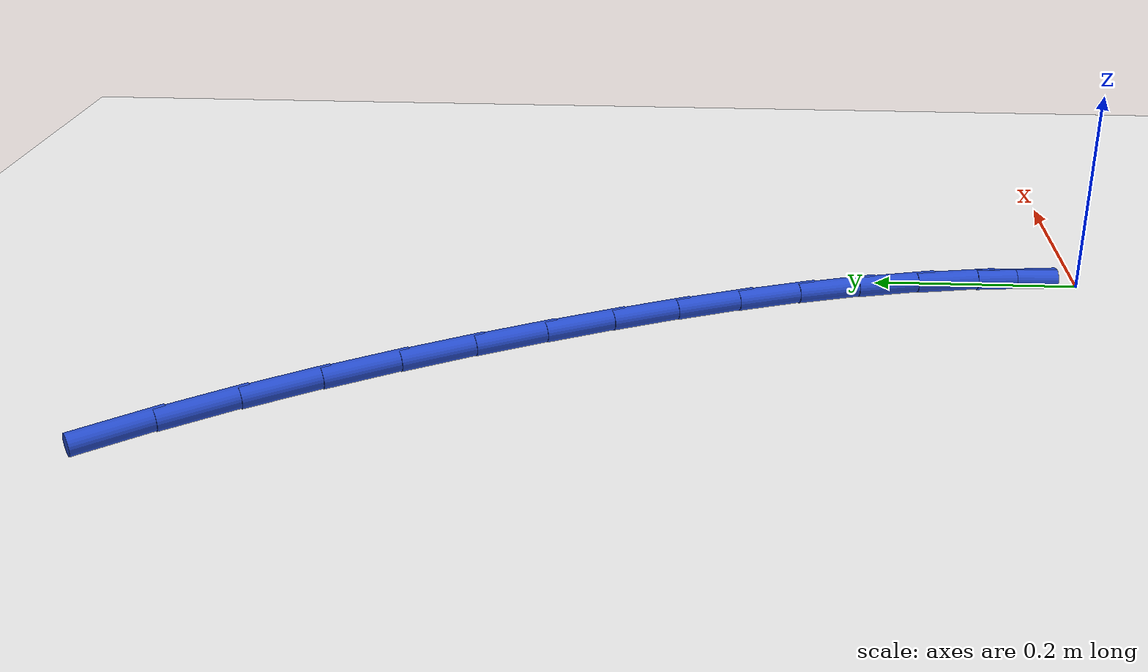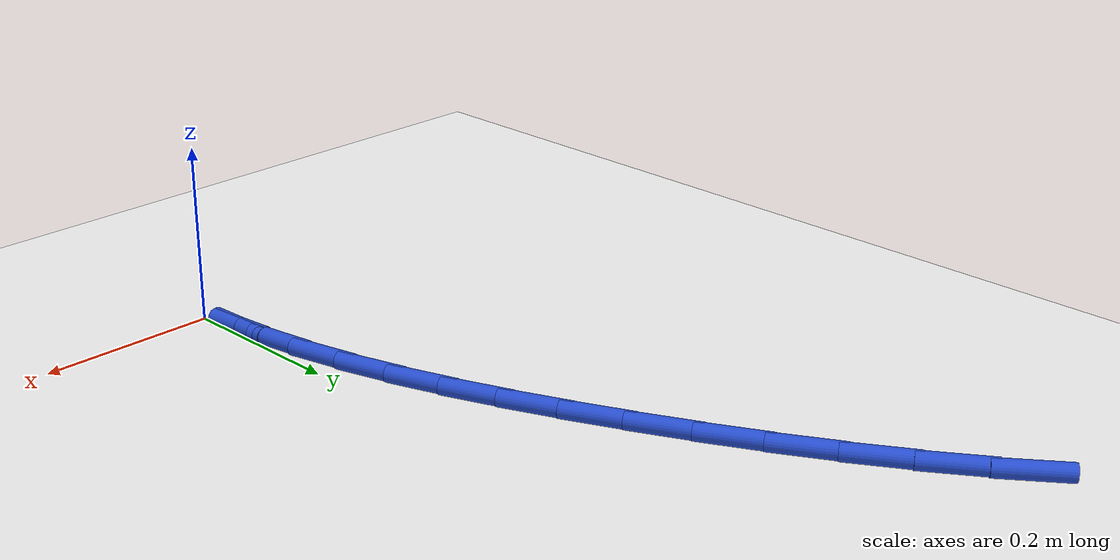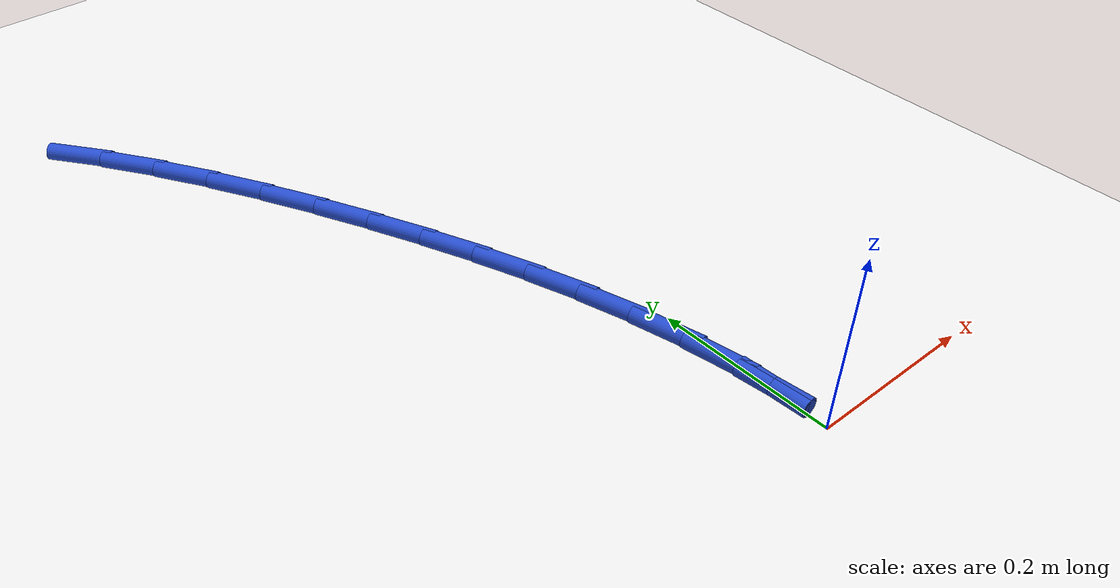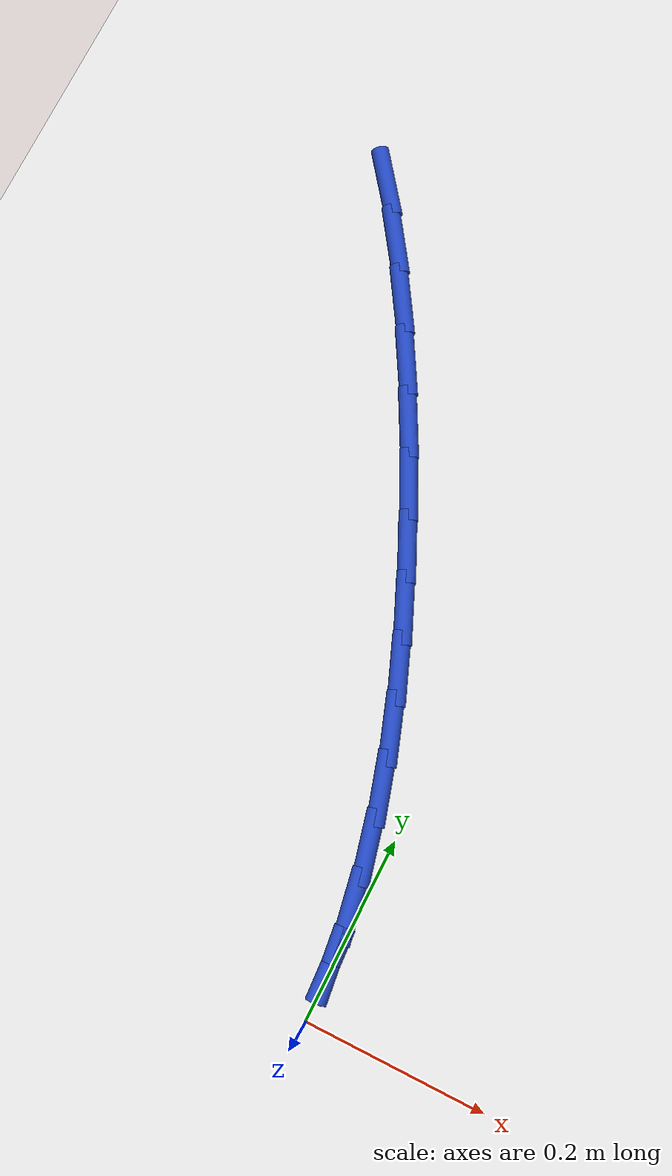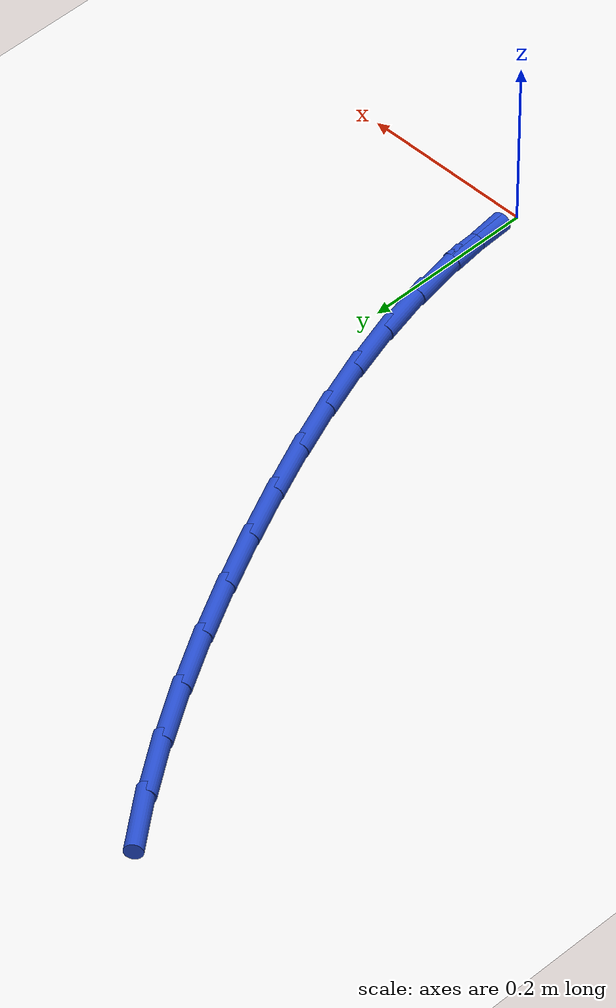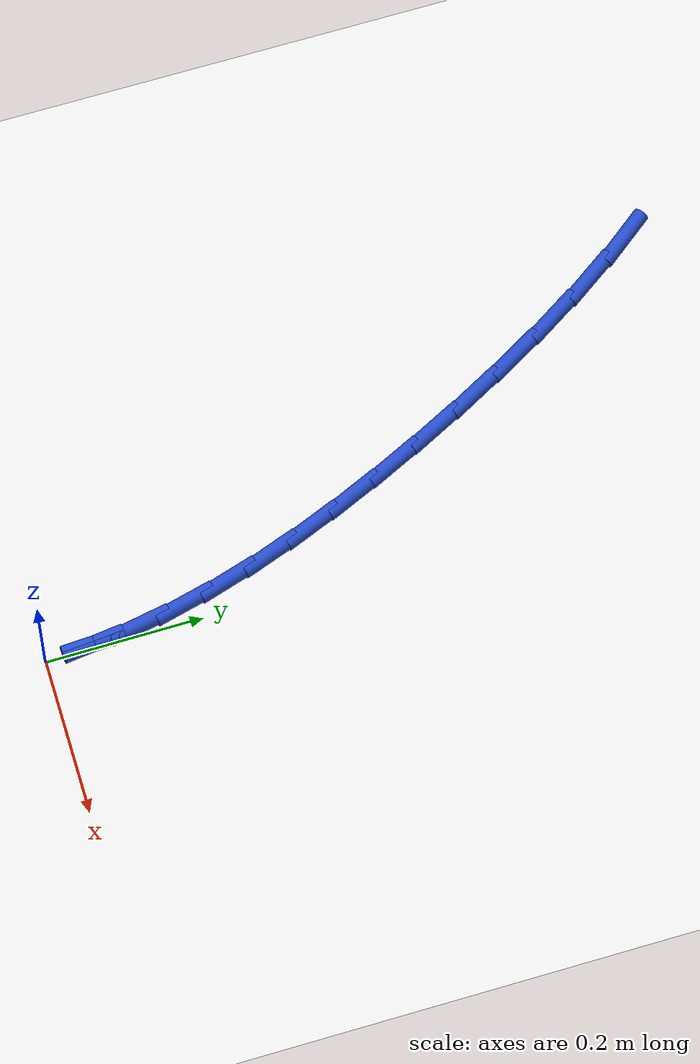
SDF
<sdf version="1.6">
 <world name="default">
  <model name="ground_plane">
   <static>1</static>
   <link name="link">
    <collision name="collision">
     <geometry><plane><normal>0 0 1</normal><size>100 100</size></plane></geometry>
     <surface><friction><ode><mu>100</mu><mu2>50</mu2></ode></friction></surface>
    </collision>
    <visual name="visual">
     <cast_shadows>0</cast_shadows>
     <geometry><plane><normal>0 0 1</normal><size>100 100</size></plane></geometry>
     <material>
      <script><uri>file://media/materials/scripts/gazebo.material</uri><name>Gazebo/WhiteGlow</name></script>
     </material>
    </visual>
   </link>
  </model>
  <model name="line">
   <link name="link_1">
    <pose>-0.0031890736569195133 0.06182125240258177 0.01 0 1.57 -1.4520765244540788</pose>
    <collision name="collision">
     <geometry><cylinder><radius>0.01</radius><length>0.08</length></cylinder></geometry>
    </collision>
    <visual name="visual">
     <material>
      <script><name>Gazebo/Blue</name><uri>file://media/materials/scripts/gazebo.material</uri></script>
     </material>
     <geometry><cylinder><radius>0.01</radius><length>0.08</length></cylinder></geometry>
    </visual>
   </link>
   <link name="link_2">
    <pose>-0.010441485276749393 0.12262245525709865 0.01 0 1.57 -1.3885227516686096</pose>
    <collision name="collision">
     <geometry><cylinder><radius>0.01</radius><length>0.08</length></cylinder></geometry>
    </collision>
    <visual name="visual">
     <material>
      <script><name>Gazebo/Blue</name><uri>file://media/materials/scripts/gazebo.material</uri></script>
     </material>
     <geometry><cylinder><radius>0.01</radius><length>0.08</length></cylinder></geometry>
    </visual>
   </link>
   <link name="link_3">
    <pose>-0.02151164840654603 0.1826821409281045 0.01 0 1.57 -1.3298779963749565</pose>
    <collision name="collision">
     <geometry><cylinder><radius>0.01</radius><length>0.08</length></cylinder></geometry>
    </collision>
    <visual name="visual">
     <material>
      <script><name>Gazebo/Blue</name><uri>file://media/materials/scripts/gazebo.material</uri></script>
     </material>
     <geometry><cylinder><radius>0.01</radius><length>0.08</length></cylinder></geometry>
    </visual>
   </link>
   <link name="link_4">
    <pose>-0.03615397659336581 0.24227884178015308 0.01 0 1.57 -1.2770983983144386</pose>
    <collision name="collision">
     <geometry><cylinder><radius>0.01</radius><length>0.08</length></cylinder></geometry>
    </collision>
    <visual name="visual">
     <material>
      <script><name>Gazebo/Blue</name><uri>file://media/materials/scripts/gazebo.material</uri></script>
     </material>
     <geometry><cylinder><radius>0.01</radius><length>0.08</length></cylinder></geometry>
    </visual>
   </link>
   <link name="link_5">
    <pose>-0.05412288338426511 0.3016910901777981 0.01 0 1.57 -1.2307916048938095</pose>
    <collision name="collision">
     <geometry><cylinder><radius>0.01</radius><length>0.08</length></cylinder></geometry>
    </collision>
    <visual name="visual">
     <material>
      <script><name>Gazebo/Blue</name><uri>file://media/materials/scripts/gazebo.material</uri></script>
     </material>
     <geometry><cylinder><radius>0.01</radius><length>0.08</length></cylinder></geometry>
    </visual>
   </link>
   <link name="link_6">
    <pose>-0.07517278232630034 0.3611974184855936 0.01 0 1.57 -1.1912444167666578</pose>
    <collision name="collision">
     <geometry><cylinder><radius>0.01</radius><length>0.08</length></cylinder></geometry>
    </collision>
    <visual name="visual">
     <material>
      <script><name>Gazebo/Blue</name><uri>file://media/materials/scripts/gazebo.material</uri></script>
     </material>
     <geometry><cylinder><radius>0.01</radius><length>0.08</length></cylinder></geometry>
    </visual>
   </link>
   <link name="link_7">
    <pose>-0.09905808696652788 0.4210763590680933 0.01 0 1.57 -1.1584800208394679</pose>
    <collision name="collision">
     <geometry><cylinder><radius>0.01</radius><length>0.08</length></cylinder></geometry>
    </collision>
    <visual name="visual">
     <material>
      <script><name>Gazebo/Blue</name><uri>file://media/materials/scripts/gazebo.material</uri></script>
     </material>
     <geometry><cylinder><radius>0.01</radius><length>0.08</length></cylinder></geometry>
    </visual>
   </link>
   <link name="link_8">
    <pose>-0.12553321085200403 0.4816064442898508 0.01 0 1.57 -1.1318240715188859</pose>
    <collision name="collision">
     <geometry><cylinder><radius>0.01</radius><length>0.08</length></cylinder></geometry>
    </collision>
    <visual name="visual">
     <material>
      <script><name>Gazebo/Blue</name><uri>file://media/materials/scripts/gazebo.material</uri></script>
     </material>
     <geometry><cylinder><radius>0.01</radius><length>0.08</length></cylinder></geometry>
    </visual>
   </link>
   <link name="link_9">
    <pose>-0.15436368793908373 0.543009862400453 0.01 0 1.57 -1.1057404793102135</pose>
    <collision name="collision">
     <geometry><cylinder><radius>0.01</radius><length>0.08</length></cylinder></geometry>
    </collision>
    <visual name="visual">
     <material>
      <script><name>Gazebo/Blue</name><uri>file://media/materials/scripts/gazebo.material</uri></script>
     </material>
     <geometry><cylinder><radius>0.01</radius><length>0.08</length></cylinder></geometry>
    </visual>
   </link>
   <link name="link_10">
    <pose>-0.18543028828543084 0.6049249314009845 0.01 0 1.57 -1.0766282411555457</pose>
    <collision name="collision">
     <geometry><cylinder><radius>0.01</radius><length>0.08</length></cylinder></geometry>
    </collision>
    <visual name="visual">
     <material>
      <script><name>Gazebo/Blue</name><uri>file://media/materials/scripts/gazebo.material</uri></script>
     </material>
     <geometry><cylinder><radius>0.01</radius><length>0.08</length></cylinder></geometry>
    </visual>
   </link>
   <link name="link_11">
    <pose>-0.21868196273450655 0.6666445156378658 0.01 0 1.57 -1.043794212703892</pose>
    <collision name="collision">
     <geometry><cylinder><radius>0.01</radius><length>0.08</length></cylinder></geometry>
    </collision>
    <visual name="visual">
     <material>
      <script><name>Gazebo/Blue</name><uri>file://media/materials/scripts/gazebo.material</uri></script>
     </material>
     <geometry><cylinder><radius>0.01</radius><length>0.08</length></cylinder></geometry>
    </visual>
   </link>
   <link name="link_12">
    <pose>-0.25406855104737436 0.727456975551749 0.01 0 1.57 -1.0064439818271262</pose>
    <collision name="collision">
     <geometry><cylinder><radius>0.01</radius><length>0.08</length></cylinder></geometry>
    </collision>
    <visual name="visual">
     <material>
      <script><name>Gazebo/Blue</name><uri>file://media/materials/scripts/gazebo.material</uri></script>
     </material>
     <geometry><cylinder><radius>0.01</radius><length>0.08</length></cylinder></geometry>
    </visual>
   </link>
   <link name="link_13">
    <pose>-0.2915398929850979 0.786650671583286 0.01 0 1.57 -0.9636006186926781</pose>
    <collision name="collision">
     <geometry><cylinder><radius>0.01</radius><length>0.08</length></cylinder></geometry>
    </collision>
    <visual name="visual">
     <material>
      <script><name>Gazebo/Blue</name><uri>file://media/materials/scripts/gazebo.material</uri></script>
     </material>
     <geometry><cylinder><radius>0.01</radius><length>0.08</length></cylinder></geometry>
    </visual>
   </link>
   <link name="link_14">
    <pose>-0.3310458283087407 0.8435139641731293 0.01 0 1.57 -0.91405789170835</pose>
    <collision name="collision">
     <geometry><cylinder><radius>0.01</radius><length>0.08</length></cylinder></geometry>
    </collision>
    <visual name="visual">
     <material>
      <script><name>Gazebo/Blue</name><uri>file://media/materials/scripts/gazebo.material</uri></script>
     </material>
     <geometry><cylinder><radius>0.01</radius><length>0.08</length></cylinder></geometry>
    </visual>
   </link>
   <link name="link_121">
    <pose>-0.0032397189803839467 0.061664817037157725 0.01 0 1.57 -1.5183070255940643</pose>
    <collision name="collision">
     <geometry><cylinder><radius>0.01</radius><length>0.08</length></cylinder></geometry>
    </collision>
    <visual name="visual">
     <material>
      <script><name>Gazebo/Blue</name><uri>file://media/materials/scripts/gazebo.material</uri></script>
     </material>
     <geometry><cylinder><radius>0.01</radius><length>0.08</length></cylinder></geometry>
    </visual>
   </link>
  </model>
 </world>
</sdf>
